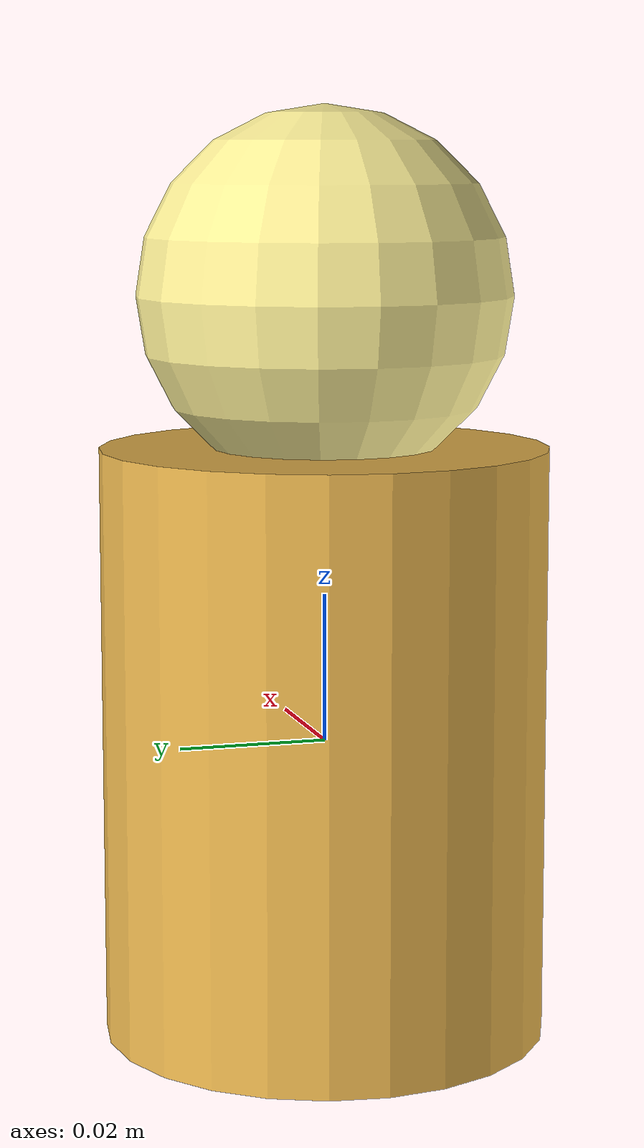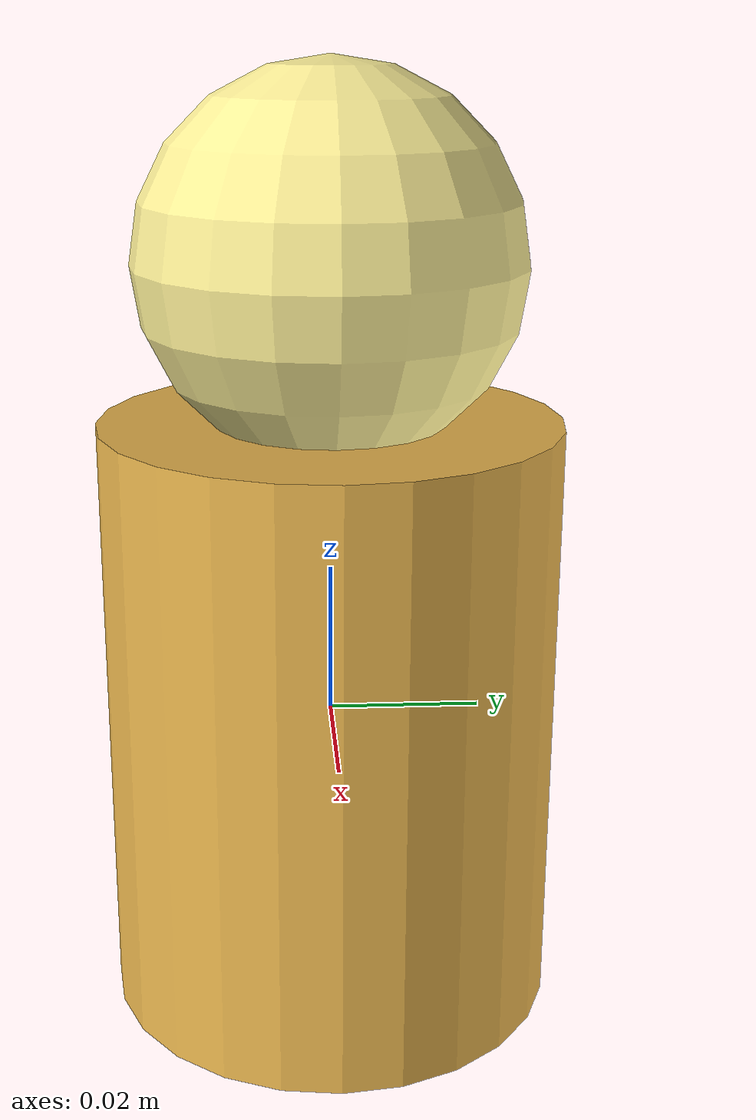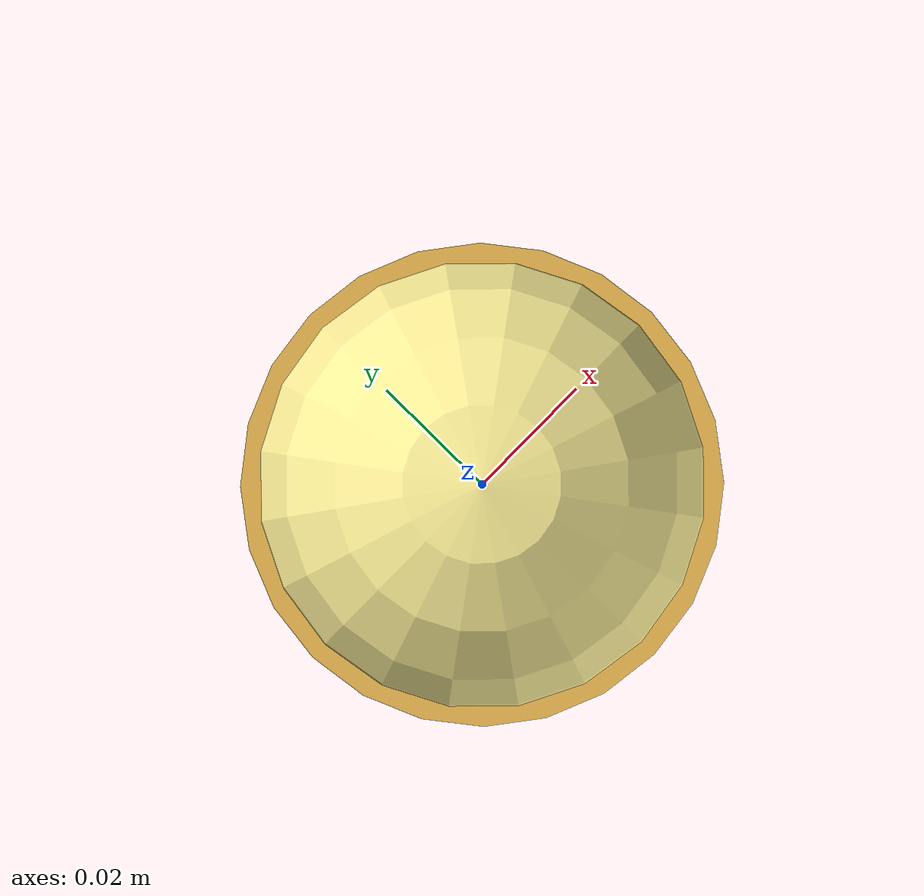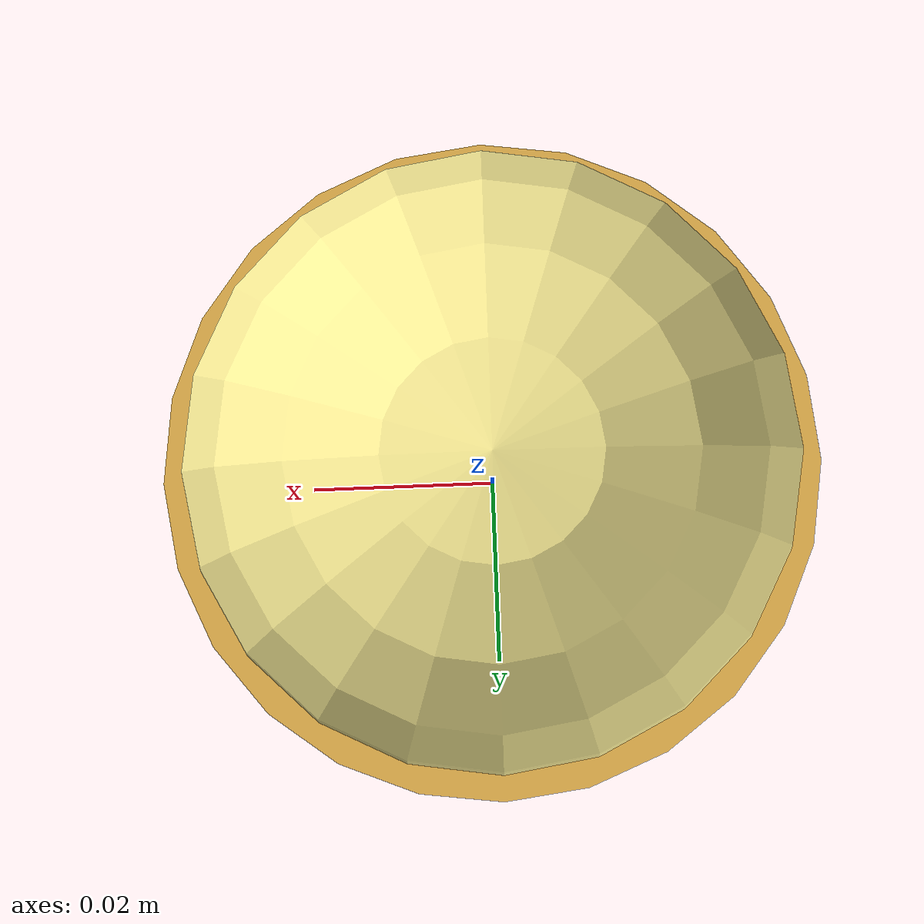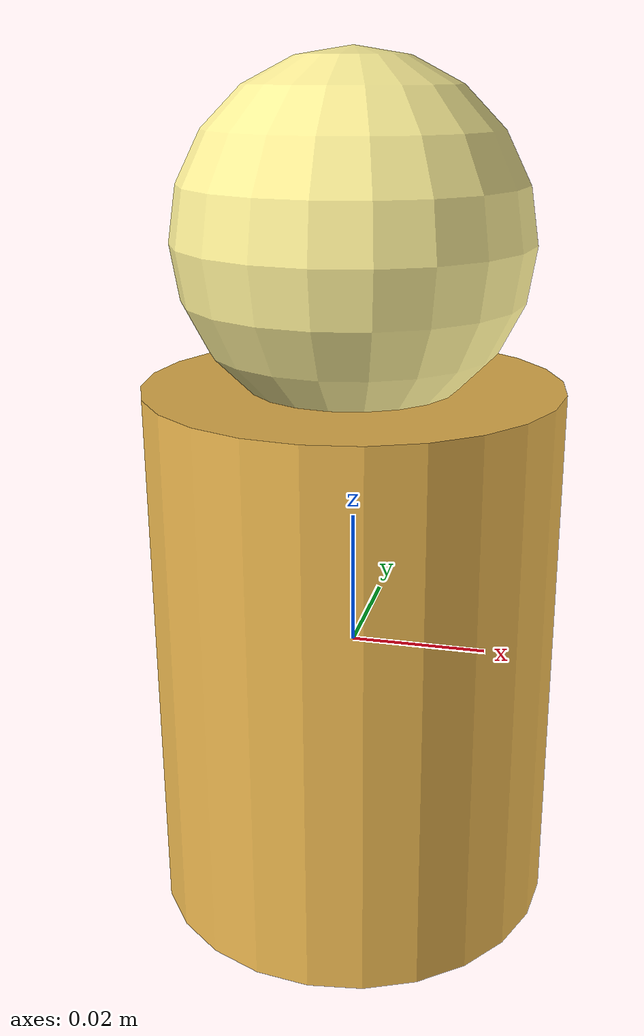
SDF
<?xml version="1.0" ?>
<sdf version="1.8">
  <model name="tungsten_lamp">
    <static>true</static>
    <link name="lamp_link">
      <!-- Small cylinder representing the lamp body -->
      <visual name="lamp_body">
        <geometry>
          <cylinder>
            <radius>0.03</radius>
            <length>0.08</length>
          </cylinder>
        </geometry>
        <material>
          <ambient>0.8 0.6 0.2 1</ambient>
          <diffuse>0.9 0.7 0.3 1</diffuse>
          <specular>1.0 0.9 0.5 1</specular>
        </material>
      </visual>

      <!-- Sphere on top representing the glowing bulb -->
      <visual name="lamp_bulb">
        <pose>0 0 0.06 0 0 0</pose>
        <geometry>
          <sphere>
            <radius>0.025</radius>
          </sphere>
        </geometry>
        <material>
          <ambient>1.0 0.9 0.5 1</ambient>
          <diffuse>1.0 0.95 0.6 1</diffuse>
          <emissive>1.0 0.8 0.3 1</emissive>
        </material>
      </visual>

      <!-- Point light for warm tungsten glow in the scene -->
      <light name="lamp_glow" type="point">
        <pose>0 0 0.06 0 0 0</pose>
        <diffuse>1.0 0.8 0.4 1</diffuse>
        <specular>0.5 0.4 0.2 1</specular>
        <attenuation>
          <range>5</range>
          <constant>0.5</constant>
          <linear>0.2</linear>
          <quadratic>0.1</quadratic>
        </attenuation>
      </light>
    </link>
  </model>
</sdf>
